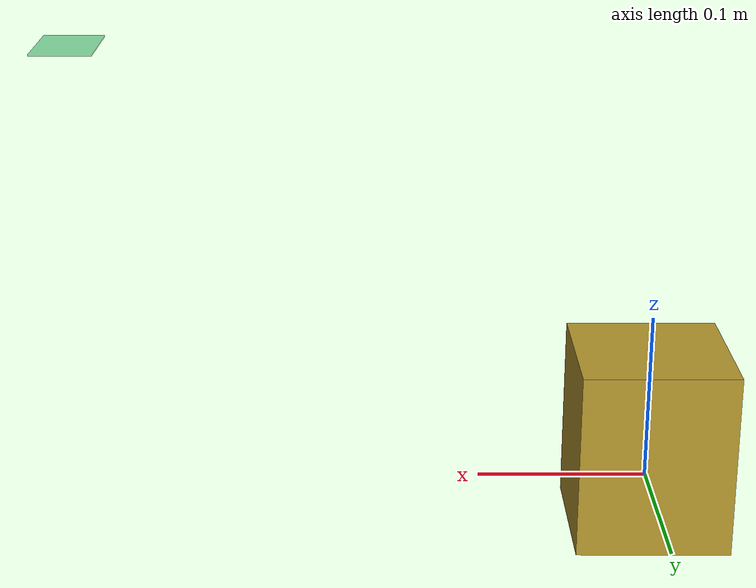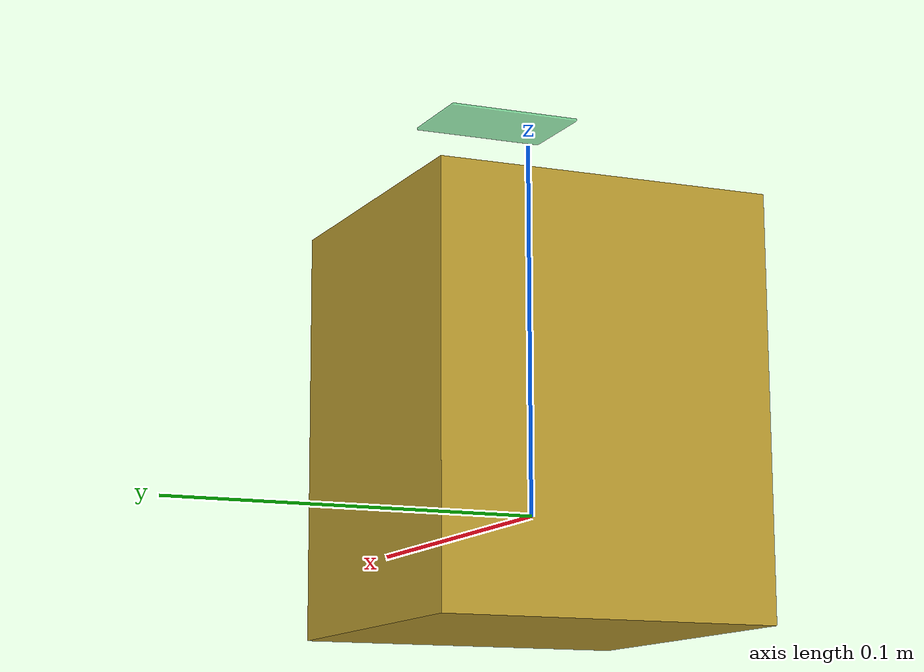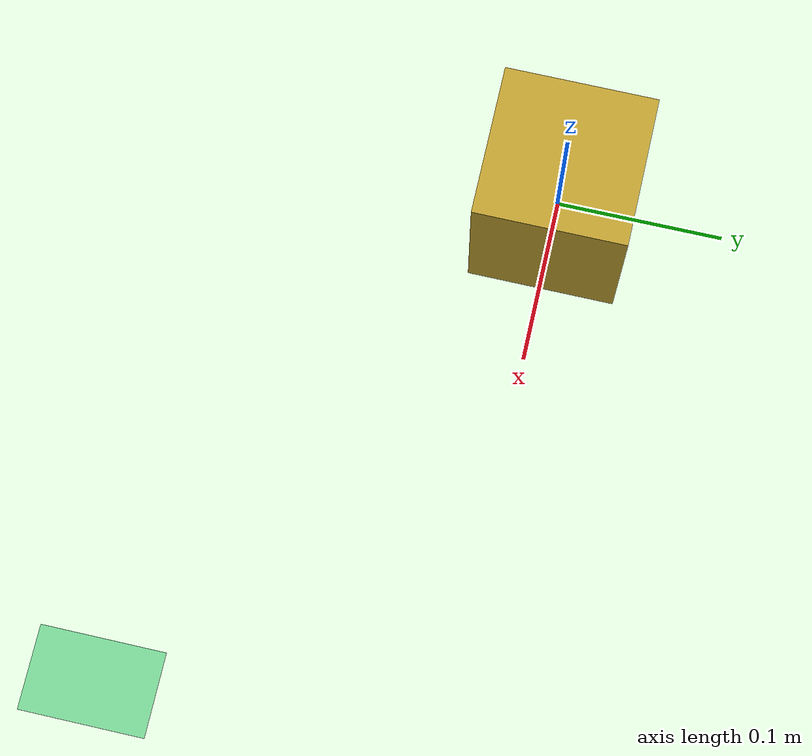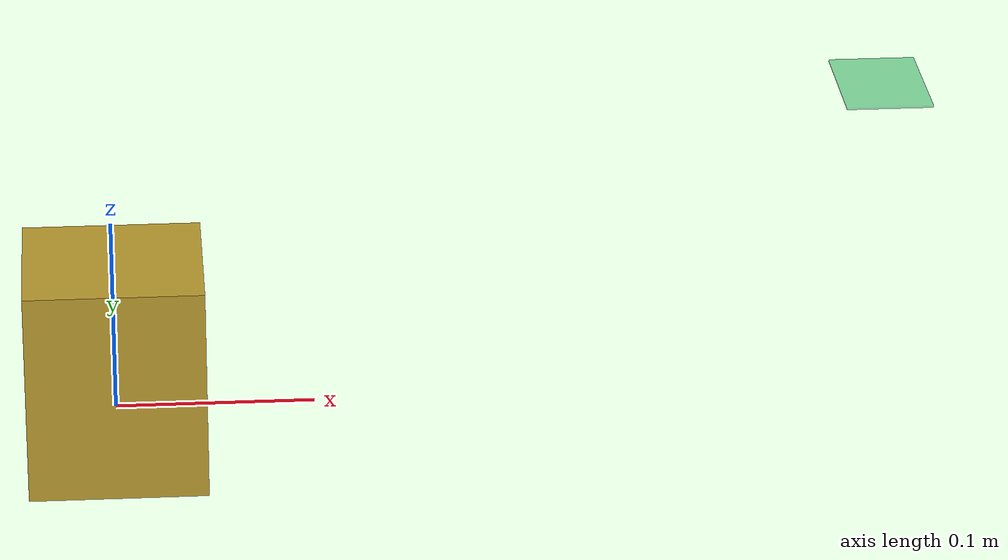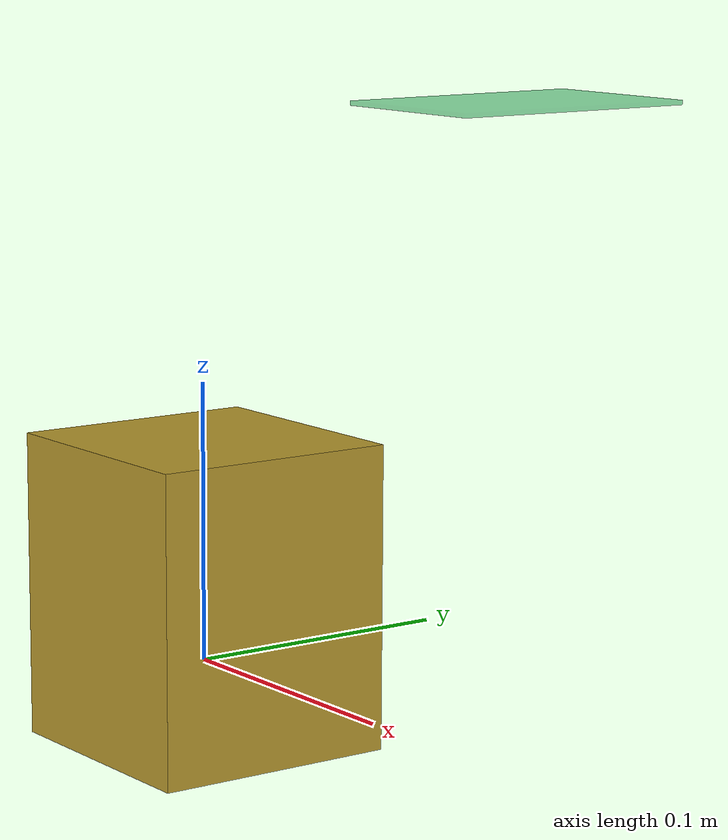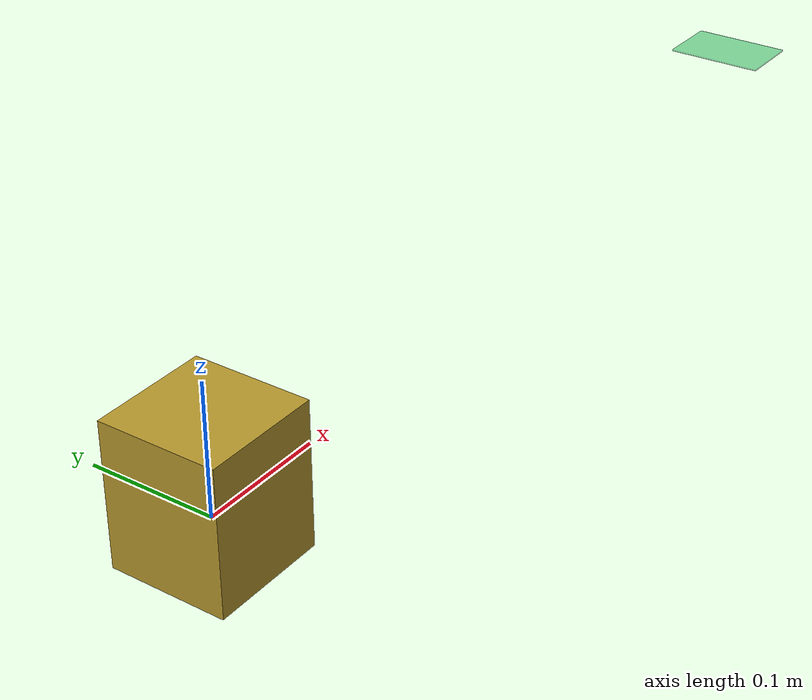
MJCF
<mujoco model="robobuddy_so101_manipulation">
  <compiler angle="radian" autolimits="true"/>
  <option integrator="implicitfast" timestep="0.005" cone="elliptic" iterations="10" ls_iterations="20" impratio="10" gravity="0 0 -9.81"/>
  <default>
    <default class="so101">
      <joint damping="1" frictionloss="0.1" armature="0.005"/>
      <geom group="3" condim="3" rgba="0.72 0.60 0.18 1"/>
    </default>
    <default class="sts3215">
      <joint damping="0.60" frictionloss="0.052" armature="0.028"/>
      <position kp="998.22" kv="2.731" forcerange="-2.94 2.94"/>
    </default>
    <default class="gripper_collision">
      <geom group="3" condim="6" friction="1 5e-3 5e-4" solref="0.01 1" priority="1" rgba="0.78 0.58 0.12 1"/>
    </default>
    <default class="benchmark_contact">
      <geom group="3" condim="6" friction="0.8 0.005 0.0001" solref="0.01 1" rgba="0.18 0.56 0.84 1"/>
    </default>
  </default>
  <worldbody>
    <light pos="0 0 2" dir="0 0 -1"/>
    <!-- Synthetic benchmark support pads. The split geometry keeps the source-derived camera collision volume physically active while leaving its swept volume unobstructed. -->
    <geom name="benchmark_source_support" type="box" size="0.025 0.025 0.02" pos="0.39416 -0.00169 0.207" class="benchmark_contact" rgba="0.50 0.54 0.58 1"/>
    <geom name="benchmark_target_support" type="box" size="0.025 0.045 0.02" pos="0.358 -0.156 0.207" class="benchmark_contact" rgba="0.50 0.54 0.58 1"/>
    <!-- Non-colliding target marker; task success is evaluated from the free block body, never from this marker. -->
    <geom name="benchmark_target_region" type="box" size="0.02 0.03 0.0005" pos="0.358 -0.156 0.2275" contype="0" conaffinity="0" group="2" rgba="0.16 0.72 0.36 0.55"/>
    <body name="benchmark_block" pos="0.39416 -0.00169 0.234">
      <freejoint name="benchmark_block_free"/>
      <inertial pos="0 0 0" mass="0.020" diaginertia="5.6666667e-7 7.5333333e-7 6.6666667e-7"/>
      <geom name="benchmark_block_geom" type="box" size="0.008 0.006 0.007" class="benchmark_contact"/>
    </body>
    <body name="base" pos="0 0 0" quat="1 0 0 0" childclass="so101">
      <inertial pos="0.0137179 -5.19711e-05 0.0334843" mass="0.147"
        fullinertia="0.000114686 0.000136117 0.000130364 -4.59787e-07 4.97151e-06 9.75275e-08"/>
      <geom name="base_proxy" type="box" size="0.045 0.045 0.055" pos="0 0 0.025" contype="0" conaffinity="0" group="2"/>
      <site group="3" name="baseframe" pos="0 0 0" quat="1 0 0 0"/>
      <body name="shoulder" pos="0.0388353 0 0.0624" quat="0 0 -1 0">
        <joint axis="0 0 1" name="shoulder_pan" type="hinge" range="-1.91986 1.91986" class="sts3215"/>
        <inertial pos="-0.0307604 -1.7e-05 -0.0252713" mass="0.100006"
          fullinertia="8.3759e-05 8.10403e-05 2.39783e-05 7.55525e-08 -1.16342e-06 1.54663e-07"/>
        <geom name="shoulder_motor_proxy" type="box" pos="-0.030399 0.000422 -0.0387" quat="1 1 1 -1" size="0.023 0.015 0.01"/>
        <geom name="shoulder_holder_proxy" type="box" pos="-0.025 0 0" quat="1 1 -1 1" size="0.038 0.025 0.02"/>
        <body name="upper_arm" pos="-0.0303992 -0.0182778 -0.0542" quat="1 -1 -1 -1">
          <joint axis="0 0 1" name="shoulder_lift" type="hinge" range="-1.7453293 1.7453293" class="sts3215"/>
          <inertial pos="-0.089847 -0.008382 0.018409" mass="0.103"
            fullinertia="4.08002e-05 0.000147318 0.000142487 -1.97819e-05 -4.03016e-08 8.97326e-09"/>
          <geom name="upper_arm_motor_proxy" type="box" pos="-0.06 0 0.02" quat="0 -1 1 0" size="0.01 0.07 0.03"/>
          <geom name="upper_arm_link_proxy" type="box" pos="-0.12 -0.014 0.0182" quat="0 1 0 0" size="0.01 0.02 0.015"/>
          <body name="lower_arm" pos="-0.11257 -0.028 0" quat="1 0 0 1">
            <joint axis="0 0 1" name="elbow_flex" type="hinge" range="-1.69 1.69" class="sts3215"/>
            <inertial pos="-0.098070 0.0032438 0.018283" mass="0.104"
              fullinertia="2.87438e-05 0.000159844 0.00014529 7.41152e-06 1.26409e-06 -4.90188e-08"/>
            <geom name="lower_arm_link_proxy" type="box" pos="-0.05 0 0.0182" quat="0 1 0 0" size="0.07 0.01 0.03"/>
            <geom name="lower_arm_motor_proxy" type="box" pos="-0.125 0.005 0.018" quat="0 -1 0 0" size="0.023 0.013 0.018"/>
            <body name="wrist" pos="-0.1349 0.0052 0" quat="1 0 0 -1">
              <joint axis="0 0 1" name="wrist_flex" type="hinge" range="-1.658063 1.658063" class="sts3215"/>
              <inertial pos="-0.000103312 -0.0386143 0.0281156" mass="0.079"
                fullinertia="3.68263e-05 2.5391e-05 2.1e-05 1.7893e-08 -5.28128e-08 3.6412e-06"/>
              <geom name="wrist_motor_proxy" type="box" pos="0 -0.0424 0.0256" quat="1 1 1 -1" size="0.029 0.015 0.018"/>
              <geom name="wrist_link_proxy" type="box" pos="0 -0.02 0.0191" quat="1 -1 -1 -1" size="0.027 0.01 0.03"/>
              <body name="gripper" pos="5.55112e-17 -0.0611 0.0181" quat="0.0172091 -0.0172091 0.706897 0.706897">
                <joint axis="0 0 1" name="wrist_roll" type="hinge" range="-2.7438473 2.7438473" class="sts3215"/>
                <inertial pos="0.000214 0.000245 -0.025187" mass="0.087"
                  fullinertia="2.75087e-05 4.33657e-05 3.45059e-05 -3.35241e-07 -5.7352e-06 -5.17847e-08"/>
                <geom name="fixed_jaw_box1" class="gripper_collision" type="box" size="0.0325 0.015 0.015" pos="-0.0025 0 -0.022"/>
                <geom name="fixed_jaw_box2" class="gripper_collision" type="box" size="0.01 0.015 0.005" pos="-0.024 0 -0.04"/>
                <geom name="fixed_jaw_sph_tip1" class="gripper_collision" type="sphere" size="0.00075" pos="-0.0081 0 -0.101"/>
                <geom name="fixed_jaw_sph_tip2" class="gripper_collision" type="sphere" size="0.00075" pos="-0.0081 0.0035 -0.0975"/>
                <geom name="fixed_jaw_sph_tip3" class="gripper_collision" type="sphere" size="0.00075" pos="-0.0081 -0.0035 -0.0975"/>
                <geom name="fixed_jaw_box3" class="gripper_collision" type="capsule" size="0.0011 0.002" pos="-0.009 0 -0.103" euler="1.57 0 0"/>
                <geom name="fixed_jaw_box4" class="gripper_collision" type="box" size="0.001 0.004 0.004" pos="-0.009 0 -0.0982"/>
                <geom name="fixed_jaw_box5" class="gripper_collision" type="box" size="0.001 0.005 0.006" pos="-0.0108 0 -0.0905"/>
                <geom name="fixed_jaw_box6" class="gripper_collision" type="box" size="0.001 0.009 0.008" pos="-0.0125 0 -0.0727"/>
                <geom name="fixed_jaw_box7" class="gripper_collision" type="box" size="0.001 0.01 0.008" pos="-0.0143 0 -0.053"/>
                <site group="3" name="gripperframe" pos="0.012 -0.000218 -0.098127" quat="1 0 1 0"/>
                <!-- Source camera-mount mass restored using the two source collision boxes as a 0.012 kg inertia surrogate. -->
                <body name="camera_mount">
                  <geom name="camera_box1" class="gripper_collision" type="box" size="0.015 0.015 0.003" pos="-0.0025 0.03 -0.03" mass="0.0040540541"/>
                  <geom name="camera_box2" class="gripper_collision" type="box" size="0.021 0.021 0.003" pos="-0.001 0.06 -0.04" euler="-0.55 0 0" mass="0.0079459459"/>
                </body>
                <body name="moving_jaw_so101_v1" pos="0.0202 0.0188 -0.0234" quat="1 1 0 0">
                  <joint axis="0 0 1" name="gripper" type="hinge" range="-0.174533 1.7453292" class="sts3215"/>
                  <inertial pos="-0.001575 -0.0300244 0.0192755" mass="0.012"
                    fullinertia="6.61427e-06 1.89032e-06 5.28738e-06 -3.19807e-07 -5.90717e-09 -1.09945e-07"/>
                  <geom name="moving_jaw_box1" class="gripper_collision" type="box" size="0.01 0.01 0.015" pos="0 -0.013 0.019"/>
                  <geom name="moving_jaw_sph_tip1" class="gripper_collision" type="sphere" size="0.00075" pos="-0.012 -0.078 0.0192"/>
                  <geom name="moving_jaw_sph_tip2" class="gripper_collision" type="sphere" size="0.00075" pos="-0.012 -0.0745 0.0225"/>
                  <geom name="moving_jaw_sph_tip3" class="gripper_collision" type="sphere" size="0.00075" pos="-0.012 -0.0745 0.0155"/>
                  <geom name="moving_jaw_box2" class="gripper_collision" type="box" size="0.001 0.004 0.004" pos="-0.0113 -0.076 0.01875"/>
                  <geom name="moving_jaw_box3" class="gripper_collision" type="box" size="0.001 0.005 0.006" pos="-0.0093 -0.067 0.01875"/>
                </body>
              </body>
            </body>
          </body>
        </body>
      </body>
    </body>
  </worldbody>
  <actuator>
    <position class="sts3215" name="shoulder_pan" joint="shoulder_pan" ctrlrange="-1.91986 1.91986"/>
    <position class="sts3215" name="shoulder_lift" joint="shoulder_lift" ctrlrange="-1.74533 1.74533"/>
    <position class="sts3215" name="elbow_flex" joint="elbow_flex" ctrlrange="-1.69 1.69"/>
    <position class="sts3215" name="wrist_flex" joint="wrist_flex" ctrlrange="-1.65806 1.65806"/>
    <position class="sts3215" name="wrist_roll" joint="wrist_roll" ctrlrange="-2.74385 2.84121"/>
    <position class="sts3215" name="gripper" joint="gripper" ctrlrange="-0.17453 1.74533"/>
  </actuator>
</mujoco>
